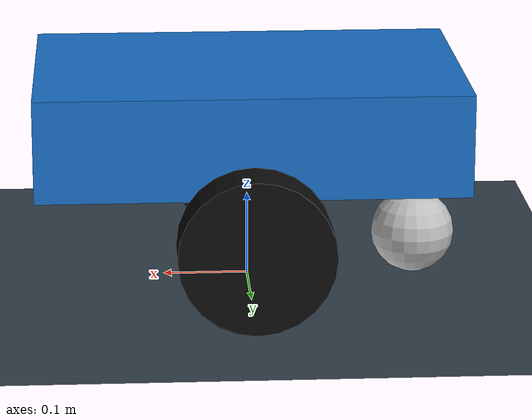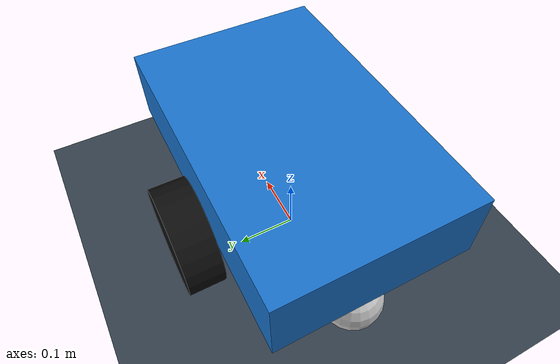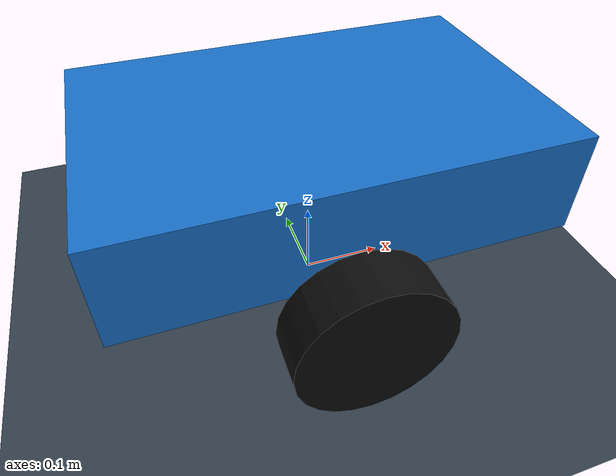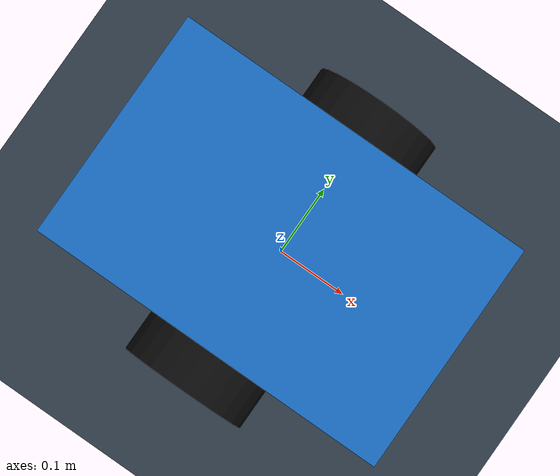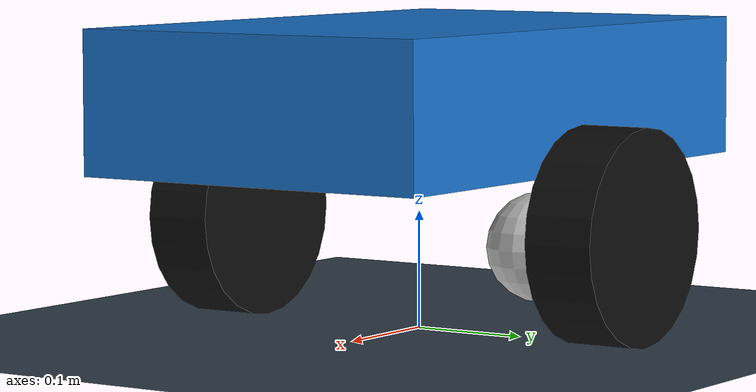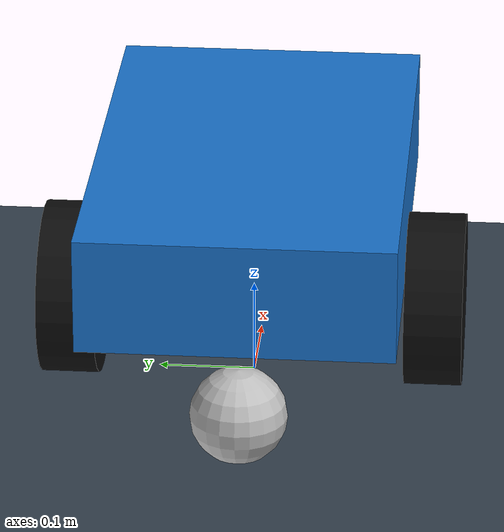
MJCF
<?xml version="1.0" encoding="UTF-8"?>
<mujoco model="diffbot">

  <compiler angle="degree" autolimits="true"/>

  <option
    timestep="0.002"
    gravity="0 0 -9.81"
    integrator="implicitfast"/>

  <default>
    <joint
      damping="0.15"
      armature="0.01"/>

    <geom
      condim="3"
      friction="1.2 0.02 0.001"/>
  </default>

  <worldbody>

    <!-- MuJoCo가 사용하는 바닥 -->
    <geom
      name="ground"
      type="plane"
      pos="0 0 0"
      size="10 10 0.1"
      rgba="0.20 0.25 0.30 1"/>

    <!-- 로봇 본체 -->
    <body
      name="base"
      pos="0 0 0.20">

      <!-- 로봇이 공간 안에서 자유롭게 이동할 수 있게 하는 관절 -->
      <freejoint name="base_free"/>

      <!-- 파란색 차체 -->
      <geom
        name="chassis"
        type="box"
        size="0.25 0.16 0.06"
        mass="5.0"
        rgba="0.10 0.45 0.80 1"/>

      <!-- 뒤쪽 보조 바퀴 역할을 하는 구형 캐스터 -->
      <geom
        name="caster"
        type="sphere"
        pos="-0.20 0 -0.15"
        size="0.05"
        mass="0.10"
        friction="0.20 0.01 0.001"
        rgba="0.75 0.75 0.75 1"/>

      <!-- 왼쪽 바퀴 -->
      <body
        name="left_wheel"
        pos="0 0.19 -0.11">

        <joint
          name="left_wheel_joint"
          type="hinge"
          axis="0 1 0"
          limited="false"/>

        <geom
          name="left_wheel_geom"
          type="cylinder"
          size="0.09 0.03"
          quat="0.7071068 0.7071068 0 0"
          mass="0.50"
          friction="1.50 0.02 0.001"
          rgba="0.05 0.05 0.05 1"/>
      </body>

      <!-- 오른쪽 바퀴 -->
      <body
        name="right_wheel"
        pos="0 -0.19 -0.11">

        <joint
          name="right_wheel_joint"
          type="hinge"
          axis="0 1 0"
          limited="false"/>

        <geom
          name="right_wheel_geom"
          type="cylinder"
          size="0.09 0.03"
          quat="0.7071068 0.7071068 0 0"
          mass="0.50"
          friction="1.50 0.02 0.001"
          rgba="0.05 0.05 0.05 1"/>
      </body>

    </body>
  </worldbody>

  <!-- 바퀴 속도 제어기 -->
  <actuator>
    <velocity
      name="left_wheel_velocity"
      joint="left_wheel_joint"
      kv="2.0"
      ctrllimited="true"
      ctrlrange="-12 12"/>

    <velocity
      name="right_wheel_velocity"
      joint="right_wheel_joint"
      kv="2.0"
      ctrllimited="true"
      ctrlrange="-12 12"/>
  </actuator>

  <!-- 나중에 Python에서 읽을 센서 -->
  <sensor>
    <jointpos
      name="left_wheel_position"
      joint="left_wheel_joint"/>

    <jointpos
      name="right_wheel_position"
      joint="right_wheel_joint"/>

    <jointvel
      name="left_wheel_speed"
      joint="left_wheel_joint"/>

    <jointvel
      name="right_wheel_speed"
      joint="right_wheel_joint"/>
  </sensor>

</mujoco>
